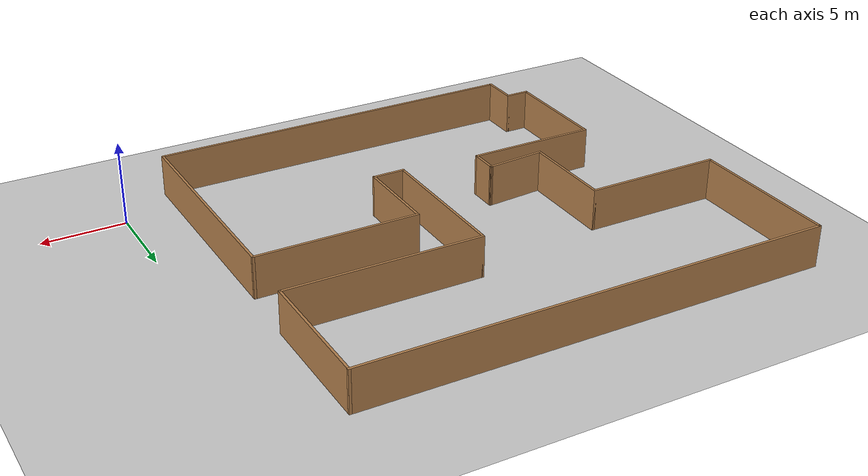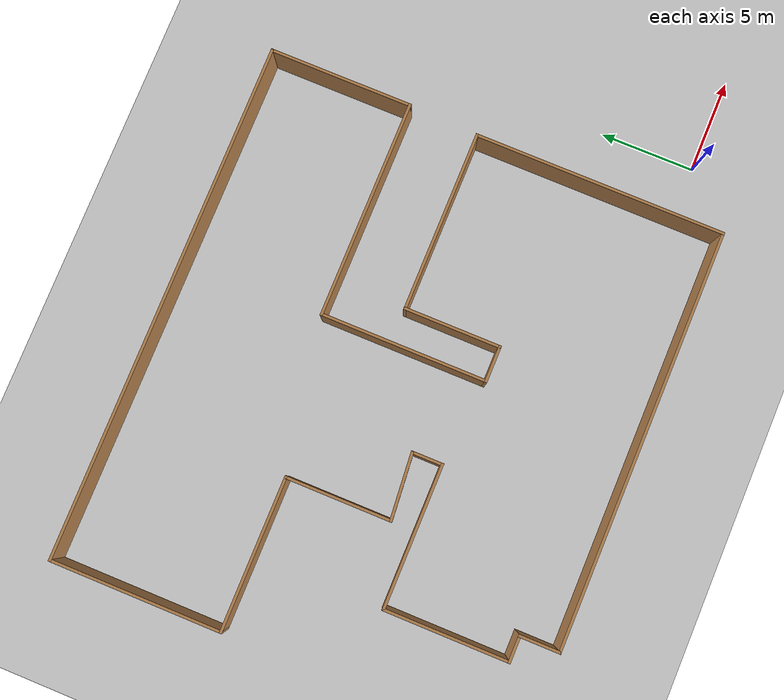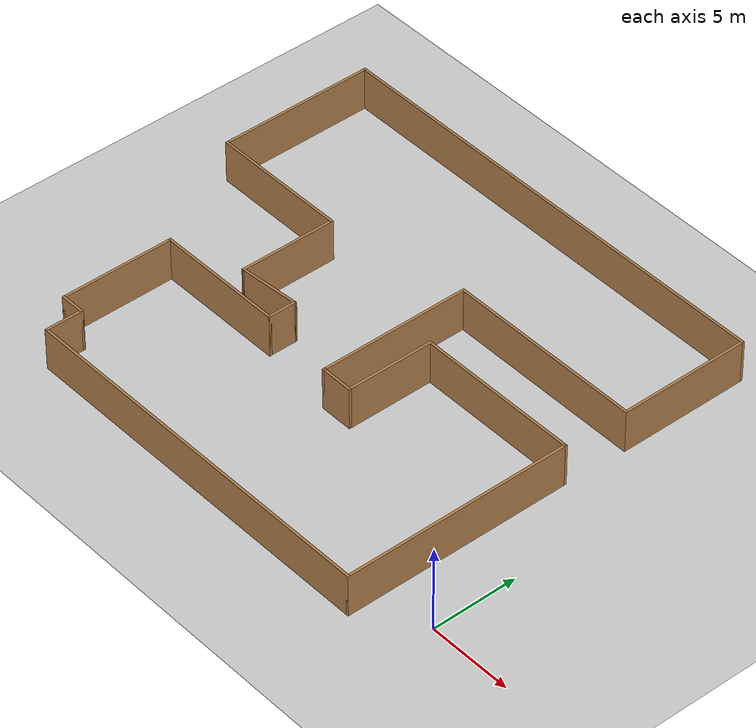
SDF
<?xml version="1.0" ?>
<sdf version='1.5'>
  <world name='default'>
    <model name='ground_plane'>
      <static>1</static>
      <link name='link'>
        <collision name='collision'>
          <geometry>
            <plane>
              <normal>0 0 1</normal>
              <size>100 100</size>
            </plane>
          </geometry>
          <surface>
            <friction>
              <ode>
                <mu>100</mu>
                <mu2>50</mu2>
              </ode>
              <torsional>
                <ode/>
              </torsional>
            </friction>
            <contact>
              <ode/>
            </contact>
            <bounce/>
          </surface>
          <max_contacts>10</max_contacts>
        </collision>
        <visual name='visual'>
          <cast_shadows>0</cast_shadows>
          <geometry>
            <plane>
              <normal>0 0 1</normal>
              <size>100 100</size>
            </plane>
          </geometry>
          <material>
            <script>
              <uri>file://media/materials/scripts/gazebo.material</uri>
              <name>Gazebo/Grey</name>
            </script>
          </material>
        </visual>
        <self_collide>0</self_collide>
        <kinematic>0</kinematic>
        <gravity>1</gravity>
      </link>
    </model>
    <!-- Layout Model -->
    <include>
      <uri>model://layout</uri>
      <pose>-17 10 0 0 0 0</pose> <!-- Adjust the pose as needed -->
    </include>

    <light name='user_directional_light_0' type='directional'>
      <pose>-16.4718 7.26177 1 0 -0 0</pose>
      <diffuse>0.5 0.5 0.5 1</diffuse>
      <specular>0.1 0.1 0.1 1</specular>
      <direction>0.1 0.1 -0.9</direction>
      <attenuation>
        <range>20</range>
        <constant>0.5</constant>
        <linear>0.01</linear>
        <quadratic>0.001</quadratic>
      </attenuation>
      <cast_shadows>1</cast_shadows>
    </light>
    <light name='user_directional_light_1' type='directional'>
      <pose>-16.4995 7.26149 1 0 -0 0</pose>
      <diffuse>0.5 0.5 0.5 1</diffuse>
      <specular>0.1 0.1 0.1 1</specular>
      <direction>0.1 0.1 -0.9</direction>
      <attenuation>
        <range>20</range>
        <constant>0.5</constant>
        <linear>0.01</linear>
        <quadratic>0.001</quadratic>
      </attenuation>
      <cast_shadows>1</cast_shadows>
    </light>
    <light name='user_directional_light_2' type='directional'>
      <pose>-16.4634 7.30818 1 0 -0 0</pose>
      <diffuse>0.5 0.5 0.5 1</diffuse>
      <specular>0.1 0.1 0.1 1</specular>
      <direction>0.1 0.1 -0.9</direction>
      <attenuation>
        <range>20</range>
        <constant>0.5</constant>
        <linear>0.01</linear>
        <quadratic>0.001</quadratic>
      </attenuation>
      <cast_shadows>1</cast_shadows>
    </light>
    <light name='user_directional_light_3' type='directional'>
      <pose>1.74858 -0.472613 1 0 -0 0</pose>
      <diffuse>0.5 0.5 0.5 1</diffuse>
      <specular>0.1 0.1 0.1 1</specular>
      <direction>0.1 0.1 -0.9</direction>
      <attenuation>
        <range>20</range>
        <constant>0.5</constant>
        <linear>0.01</linear>
        <quadratic>0.001</quadratic>
      </attenuation>
      <cast_shadows>1</cast_shadows>
    </light>
    <light name='user_directional_light_4' type='directional'>
      <pose>1.06344 -0.745327 1 0 -0 0</pose>
      <diffuse>0.5 0.5 0.5 1</diffuse>
      <specular>0.1 0.1 0.1 1</specular>
      <direction>0.1 0.1 -0.9</direction>
      <attenuation>
        <range>20</range>
        <constant>0.5</constant>
        <linear>0.01</linear>
        <quadratic>0.001</quadratic>
      </attenuation>
      <cast_shadows>1</cast_shadows>
    </light>
    <light name='user_directional_light_5' type='directional'>
      <pose>1.03443 -0.88168 1 0 -0 0</pose>
      <diffuse>0.5 0.5 0.5 1</diffuse>
      <specular>0.1 0.1 0.1 1</specular>
      <direction>0.1 0.1 -0.9</direction>
      <attenuation>
        <range>20</range>
        <constant>0.5</constant>
        <linear>0.01</linear>
        <quadratic>0.001</quadratic>
      </attenuation>
      <cast_shadows>1</cast_shadows>
    </light>
    <light name='user_directional_light_6' type='directional'>
      <pose>1.1127 -0.823127 1 0 -0 0</pose>
      <diffuse>0.5 0.5 0.5 1</diffuse>
      <specular>0.1 0.1 0.1 1</specular>
      <direction>0.1 0.1 -0.9</direction>
      <attenuation>
        <range>20</range>
        <constant>0.5</constant>
        <linear>0.01</linear>
        <quadratic>0.001</quadratic>
      </attenuation>
      <cast_shadows>1</cast_shadows>
    </light>
    <light name='user_directional_light_7' type='directional'>
      <pose>0.958368 -0.913624 1 0 -0 0</pose>
      <diffuse>0.5 0.5 0.5 1</diffuse>
      <specular>0.1 0.1 0.1 1</specular>
      <direction>0.1 0.1 -0.9</direction>
      <attenuation>
        <range>20</range>
        <constant>0.5</constant>
        <linear>0.01</linear>
        <quadratic>0.001</quadratic>
      </attenuation>
      <cast_shadows>1</cast_shadows>
    </light>
    <light name='user_directional_light_8' type='directional'>
      <pose>1.07544 -0.90878 1 0 -0 0</pose>
      <diffuse>0.5 0.5 0.5 1</diffuse>
      <specular>0.1 0.1 0.1 1</specular>
      <direction>0.1 0.1 -0.9</direction>
      <attenuation>
        <range>20</range>
        <constant>0.5</constant>
        <linear>0.01</linear>
        <quadratic>0.001</quadratic>
      </attenuation>
      <cast_shadows>1</cast_shadows>
    </light>
  </world>
</sdf>

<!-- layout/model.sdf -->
<sdf version='1.6'>
  <model name='layout'>
    <pose frame=''>-1.405 1 0 0 -0 0</pose>
    <link name='Wall_0'>
      <collision name='Wall_0_Collision'>
        <geometry>
          <box>
            <size>1.75 0.15 2.5</size>
          </box>
        </geometry>
        <pose frame=''>0 0 1.25 0 -0 0</pose>
      </collision>
      <visual name='Wall_0_Visual'>
        <pose frame=''>0 0 1.25 0 -0 0</pose>
        <geometry>
          <box>
            <size>1.75 0.15 2.5</size>
          </box>
        </geometry>
        <material>
          <script>
            <uri>file://media/materials/scripts/gazebo.material</uri>
            <name>Gazebo/Wood</name>
          </script>
          <ambient>1 1 1 1</ambient>
        </material>
        <meta>
          <layer>0</layer>
        </meta>
      </visual>
      <pose frame=''>-2.325 -2.85 0 0 -0 -1.5708</pose>
    </link>
    <link name='Wall_1'>
      <collision name='Wall_1_Collision'>
        <geometry>
          <box>
            <size>7.75 0.15 2.5</size>
          </box>
        </geometry>
        <pose frame=''>0 0 1.25 0 -0 0</pose>
      </collision>
      <visual name='Wall_1_Visual'>
        <pose frame=''>0 0 1.25 0 -0 0</pose>
        <geometry>
          <box>
            <size>7.75 0.15 2.5</size>
          </box>
        </geometry>
        <material>
          <script>
            <uri>file://media/materials/scripts/gazebo.material</uri>
            <name>Gazebo/Wood</name>
          </script>
          <ambient>1 1 1 1</ambient>
        </material>
        <meta>
          <layer>0</layer>
        </meta>
      </visual>
      <pose frame=''>-6.125 -3.65 0 0 -0 3.14159</pose>
    </link>
    <link name='Wall_10'>
      <collision name='Wall_10_Collision'>
        <geometry>
          <box>
            <size>9 0.15 2.5</size>
          </box>
        </geometry>
        <pose frame=''>0 0 1.25 0 -0 0</pose>
      </collision>
      <visual name='Wall_10_Visual'>
        <pose frame=''>0 0 1.25 0 -0 0</pose>
        <geometry>
          <box>
            <size>9 0.15 2.5</size>
          </box>
        </geometry>
        <material>
          <script>
            <uri>file://media/materials/scripts/gazebo.material</uri>
            <name>Gazebo/Wood</name>
          </script>
          <ambient>1 1 1 1</ambient>
        </material>
        <meta>
          <layer>0</layer>
        </meta>
      </visual>
      <pose frame=''>2.325 0.325 0 0 -0 1.5708</pose>
    </link>
    <link name='Wall_11'>
      <collision name='Wall_11_Collision'>
        <geometry>
          <box>
            <size>11.75 0.15 2.5</size>
          </box>
        </geometry>
        <pose frame=''>0 0 1.25 0 -0 0</pose>
      </collision>
      <visual name='Wall_11_Visual'>
        <pose frame=''>0 0 1.25 0 -0 0</pose>
        <geometry>
          <box>
            <size>11.75 0.15 2.5</size>
          </box>
        </geometry>
        <material>
          <script>
            <uri>file://media/materials/scripts/gazebo.material</uri>
            <name>Gazebo/Wood</name>
          </script>
          <ambient>1 1 1 1</ambient>
        </material>
        <meta>
          <layer>0</layer>
        </meta>
      </visual>
      <pose frame=''>8.125 4.75 0 0 -0 0</pose>
    </link>
    <link name='Wall_12'>
      <collision name='Wall_12_Collision'>
        <geometry>
          <box>
            <size>7.75 0.15 2.5</size>
          </box>
        </geometry>
        <pose frame=''>0 0 1.25 0 -0 0</pose>
      </collision>
      <visual name='Wall_12_Visual'>
        <pose frame=''>0 0 1.25 0 -0 0</pose>
        <geometry>
          <box>
            <size>7.75 0.15 2.5</size>
          </box>
        </geometry>
        <material>
          <script>
            <uri>file://media/materials/scripts/gazebo.material</uri>
            <name>Gazebo/Wood</name>
          </script>
          <ambient>1 1 1 1</ambient>
        </material>
        <meta>
          <layer>0</layer>
        </meta>
      </visual>
      <pose frame=''>13.925 8.55 0 0 -0 1.5708</pose>
    </link>
    <link name='Wall_13'>
      <collision name='Wall_13_Collision'>
        <geometry>
          <box>
            <size>28 0.15 2.5</size>
          </box>
        </geometry>
        <pose frame=''>0 0 1.25 0 -0 0</pose>
      </collision>
      <visual name='Wall_13_Visual'>
        <pose frame=''>0 0 1.25 0 -0 0</pose>
        <geometry>
          <box>
            <size>28 0.15 2.5</size>
          </box>
        </geometry>
        <material>
          <script>
            <uri>file://media/materials/scripts/gazebo.material</uri>
            <name>Gazebo/Wood</name>
          </script>
          <ambient>1 1 1 1</ambient>
        </material>
        <meta>
          <layer>0</layer>
        </meta>
      </visual>
      <pose frame=''>-0 12.35 0 0 -0 3.14159</pose>
    </link>
    <link name='Wall_14'>
      <collision name='Wall_14_Collision'>
        <geometry>
          <box>
            <size>9.25 0.15 2.5</size>
          </box>
        </geometry>
        <pose frame=''>0 0 1.25 0 -0 0</pose>
      </collision>
      <visual name='Wall_14_Visual'>
        <pose frame=''>0 0 1.25 0 -0 0</pose>
        <geometry>
          <box>
            <size>9.25 0.15 2.5</size>
          </box>
        </geometry>
        <material>
          <script>
            <uri>file://media/materials/scripts/gazebo.material</uri>
            <name>Gazebo/Wood</name>
          </script>
          <ambient>1 1 1 1</ambient>
        </material>
        <meta>
          <layer>0</layer>
        </meta>
      </visual>
      <pose frame=''>-13.925 7.8 0 0 -0 -1.5708</pose>
    </link>
    <link name='Wall_15'>
      <collision name='Wall_15_Collision'>
        <geometry>
          <box>
            <size>8.25 0.15 2.5</size>
          </box>
        </geometry>
        <pose frame=''>0 0 1.25 0 -0 0</pose>
      </collision>
      <visual name='Wall_15_Visual'>
        <pose frame=''>0 0 1.25 0 -0 0</pose>
        <geometry>
          <box>
            <size>8.25 0.15 2.5</size>
          </box>
        </geometry>
        <material>
          <script>
            <uri>file://media/materials/scripts/gazebo.material</uri>
            <name>Gazebo/Wood</name>
          </script>
          <ambient>1 1 1 1</ambient>
        </material>
        <meta>
          <layer>0</layer>
        </meta>
      </visual>
      <pose frame=''>-9.875 3.25 0 0 -0 0</pose>
    </link>
    <link name='Wall_16'>
      <collision name='Wall_16_Collision'>
        <geometry>
          <box>
            <size>5.75 0.15 2.5</size>
          </box>
        </geometry>
        <pose frame=''>0 0 1.25 0 -0 0</pose>
      </collision>
      <visual name='Wall_16_Visual'>
        <pose frame=''>0 0 1.25 0 -0 0</pose>
        <geometry>
          <box>
            <size>5.75 0.15 2.5</size>
          </box>
        </geometry>
        <material>
          <script>
            <uri>file://media/materials/scripts/gazebo.material</uri>
            <name>Gazebo/Wood</name>
          </script>
          <ambient>1 1 1 1</ambient>
        </material>
        <meta>
          <layer>0</layer>
        </meta>
      </visual>
      <pose frame=''>-5.825 0.45 0 0 -0 -1.5708</pose>
    </link>
    <link name='Wall_17'>
      <collision name='Wall_17_Collision'>
        <geometry>
          <box>
            <size>3.66283 0.15 2.5</size>
          </box>
        </geometry>
        <pose frame=''>0 0 1.25 0 -0 0</pose>
      </collision>
      <visual name='Wall_17_Visual'>
        <pose frame=''>0 0 1.25 0 -0 0</pose>
        <geometry>
          <box>
            <size>3.66283 0.15 2.5</size>
          </box>
        </geometry>
        <material>
          <script>
            <uri>file://media/materials/scripts/gazebo.material</uri>
            <name>Gazebo/Wood</name>
          </script>
          <ambient>1 1 1 1</ambient>
        </material>
        <meta>
          <layer>0</layer>
        </meta>
      </visual>
      <pose frame=''>-4.075 -2.2 0 0 -0 0.085505</pose>
    </link>
    <link name='Wall_2'>
      <collision name='Wall_2_Collision'>
        <geometry>
          <box>
            <size>6.75 0.15 2.5</size>
          </box>
        </geometry>
        <pose frame=''>0 0 1.25 0 -0 0</pose>
      </collision>
      <visual name='Wall_2_Visual'>
        <pose frame=''>0 0 1.25 0 -0 0</pose>
        <geometry>
          <box>
            <size>6.75 0.15 2.5</size>
          </box>
        </geometry>
        <material>
          <script>
            <uri>file://media/materials/scripts/gazebo.material</uri>
            <name>Gazebo/Wood</name>
          </script>
          <ambient>1 1 1 1</ambient>
        </material>
        <meta>
          <layer>0</layer>
        </meta>
      </visual>
      <pose frame=''>-9.925 -6.95 0 0 -0 -1.5708</pose>
    </link>
    <link name='Wall_3'>
      <collision name='Wall_3_Collision'>
        <geometry>
          <box>
            <size>1.5 0.15 2.5</size>
          </box>
        </geometry>
        <pose frame=''>0 0 1.25 0 -0 0</pose>
      </collision>
      <visual name='Wall_3_Visual'>
        <pose frame=''>0 0 1.25 0 -0 0</pose>
        <geometry>
          <box>
            <size>1.5 0.15 2.5</size>
          </box>
        </geometry>
        <material>
          <script>
            <uri>file://media/materials/scripts/gazebo.material</uri>
            <name>Gazebo/Wood</name>
          </script>
          <ambient>1 1 1 1</ambient>
        </material>
        <meta>
          <layer>0</layer>
        </meta>
      </visual>
      <pose frame=''>-9.25 -10.25 0 0 -0 0</pose>
    </link>
    <link name='Wall_4'>
      <collision name='Wall_4_Collision'>
        <geometry>
          <box>
            <size>2.25 0.15 2.5</size>
          </box>
        </geometry>
        <pose frame=''>0 0 1.25 0 -0 0</pose>
      </collision>
      <visual name='Wall_4_Visual'>
        <pose frame=''>0 0 1.25 0 -0 0</pose>
        <geometry>
          <box>
            <size>2.25 0.15 2.5</size>
          </box>
        </geometry>
        <material>
          <script>
            <uri>file://media/materials/scripts/gazebo.material</uri>
            <name>Gazebo/Wood</name>
          </script>
          <ambient>1 1 1 1</ambient>
        </material>
        <meta>
          <layer>0</layer>
        </meta>
      </visual>
      <pose frame=''>-8.575 -11.3 0 0 -0 -1.5708</pose>
    </link>
    <link name='Wall_5'>
      <collision name='Wall_5_Collision'>
        <geometry>
          <box>
            <size>22.5 0.15 2.5</size>
          </box>
        </geometry>
        <pose frame=''>0 0 1.25 0 -0 0</pose>
      </collision>
      <visual name='Wall_5_Visual'>
        <pose frame=''>0 0 1.25 0 -0 0</pose>
        <geometry>
          <box>
            <size>22.5 0.15 2.5</size>
          </box>
        </geometry>
        <material>
          <script>
            <uri>file://media/materials/scripts/gazebo.material</uri>
            <name>Gazebo/Wood</name>
          </script>
          <ambient>1 1 1 1</ambient>
        </material>
        <meta>
          <layer>0</layer>
        </meta>
      </visual>
      <pose frame=''>2.6 -12.35 0 0 -0 0</pose>
    </link>
    <link name='Wall_6'>
      <collision name='Wall_6_Collision'>
        <geometry>
          <box>
            <size>13.5 0.15 2.5</size>
          </box>
        </geometry>
        <pose frame=''>0 0 1.25 0 -0 0</pose>
      </collision>
      <visual name='Wall_6_Visual'>
        <pose frame=''>0 0 1.25 0 -0 0</pose>
        <geometry>
          <box>
            <size>13.5 0.15 2.5</size>
          </box>
        </geometry>
        <material>
          <script>
            <uri>file://media/materials/scripts/gazebo.material</uri>
            <name>Gazebo/Wood</name>
          </script>
          <ambient>1 1 1 1</ambient>
        </material>
        <meta>
          <layer>0</layer>
        </meta>
      </visual>
      <pose frame=''>13.775 -5.675 0 0 -0 1.5708</pose>
    </link>
    <link name='Wall_7'>
      <collision name='Wall_7_Collision'>
        <geometry>
          <box>
            <size>9.75 0.15 2.5</size>
          </box>
        </geometry>
        <pose frame=''>0 0 1.25 0 -0 0</pose>
      </collision>
      <visual name='Wall_7_Visual'>
        <pose frame=''>0 0 1.25 0 -0 0</pose>
        <geometry>
          <box>
            <size>9.75 0.15 2.5</size>
          </box>
        </geometry>
        <material>
          <script>
            <uri>file://media/materials/scripts/gazebo.material</uri>
            <name>Gazebo/Wood</name>
          </script>
          <ambient>1 1 1 1</ambient>
        </material>
        <meta>
          <layer>0</layer>
        </meta>
      </visual>
      <pose frame=''>8.975 1 0 0 -0 3.14159</pose>
    </link>
    <link name='Wall_8'>
      <collision name='Wall_8_Collision'>
        <geometry>
          <box>
            <size>5.25 0.15 2.5</size>
          </box>
        </geometry>
        <pose frame=''>0 0 1.25 0 -0 0</pose>
      </collision>
      <visual name='Wall_8_Visual'>
        <pose frame=''>0 0 1.25 0 -0 0</pose>
        <geometry>
          <box>
            <size>5.25 0.15 2.5</size>
          </box>
        </geometry>
        <material>
          <script>
            <uri>file://media/materials/scripts/gazebo.material</uri>
            <name>Gazebo/Wood</name>
          </script>
          <ambient>1 1 1 1</ambient>
        </material>
        <meta>
          <layer>0</layer>
        </meta>
      </visual>
      <pose frame=''>4.175 -1.55 0 0 -0 -1.5708</pose>
    </link>
    <link name='Wall_9'>
      <collision name='Wall_9_Collision'>
        <geometry>
          <box>
            <size>2 0.15 2.5</size>
          </box>
        </geometry>
        <pose frame=''>0 0 1.25 0 -0 0</pose>
      </collision>
      <visual name='Wall_9_Visual'>
        <pose frame=''>0 0 1.25 0 -0 0</pose>
        <geometry>
          <box>
            <size>2 0.15 2.5</size>
          </box>
        </geometry>
        <material>
          <script>
            <uri>file://media/materials/scripts/gazebo.material</uri>
            <name>Gazebo/Wood</name>
          </script>
          <ambient>1 1 1 1</ambient>
        </material>
        <meta>
          <layer>0</layer>
        </meta>
      </visual>
      <pose frame=''>3.25 -4.1 0 0 -0 3.14159</pose>
    </link>
    <static>1</static>
  </model>
</sdf>
